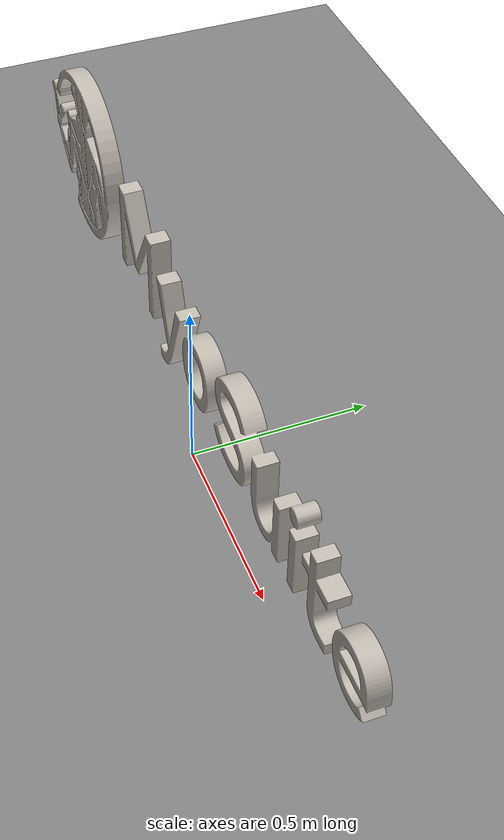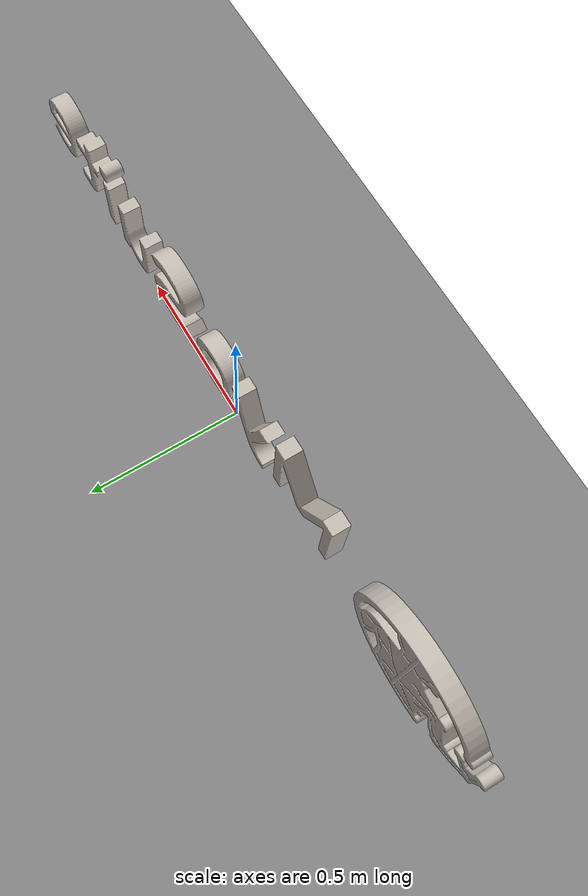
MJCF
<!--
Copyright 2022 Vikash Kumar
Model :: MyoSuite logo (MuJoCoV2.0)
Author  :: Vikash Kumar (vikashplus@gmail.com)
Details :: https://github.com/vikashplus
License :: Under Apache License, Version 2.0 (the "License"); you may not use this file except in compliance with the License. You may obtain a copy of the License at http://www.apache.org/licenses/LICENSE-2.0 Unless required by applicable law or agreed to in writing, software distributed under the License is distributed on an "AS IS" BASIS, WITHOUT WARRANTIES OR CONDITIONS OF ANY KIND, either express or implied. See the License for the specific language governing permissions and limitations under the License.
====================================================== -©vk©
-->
<mujoco model="MyoSuite logo">
    <!-- load texture and msh files -©vk©-->
    <asset>
        <texture name="textobj" type="2d" file="myosuite_logo.png"/>
        <mesh name="meshobj" file="myosuite_logo.obj" scale="1 1 1"/>
        <material name="matobj" texture="textobj"/>
    </asset>

    <!-- Add files to the world -©vk©-->
    <worldbody>
        <light directional="true" diffuse=".4 .4 .4" specular="0.1 0.1 0.1" pos="-5 -5 10.0" dir="5 5 -10"/>

        <geom type="plane" size = "5 5 1"/>

        <body pos="0.0 0.0 .3" euler="90 0 0">
            <geom type="mesh" mesh="meshobj" size="1 1 1" material="matobj" group="1" condim="1"/>
        </body>
    </worldbody>
</mujoco>
